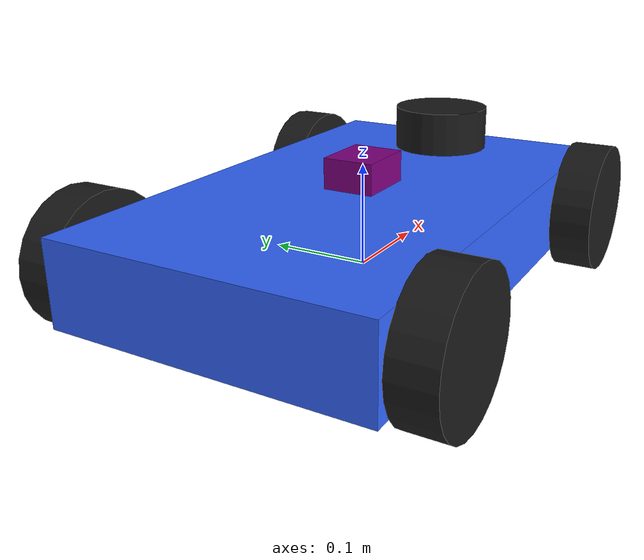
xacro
<?xml version="1.0"?>
<robot name="fourwd_robot" xmlns:xacro="http://ros.org/wiki/xacro">

  <!-- ====================== PARAMETERS ====================== -->
  <xacro:property name="chassis_length" value="0.5"/>
  <xacro:property name="chassis_width"  value="0.3"/>
  <xacro:property name="chassis_height" value="0.08"/>
  <xacro:property name="wheel_radius"   value="0.065"/>
  <xacro:property name="wheel_z_offset"   value="0.035"/>
  <xacro:property name="wheel_width"    value="0.04"/>
  <xacro:property name="wheelbase"      value="0.36"/>
  <xacro:property name="track_width"    value="0.334"/>

<xacro:include filename="$(find fourwd_robot)/urdf/robot.ros2control.xacro"/>

  <!-- ====================== MATERIALS ====================== -->
  <material name="blue">
    <color rgba="0.2 0.4 1.0 1.0"/>
  </material>
  <material name="black">
    <color rgba="0.1 0.1 0.1 1.0"/>
  </material>
  <material name="purple">
    <color rgba="0.5 0 0.5 1.0"/>
  </material>

  <!-- ====================== MACRO: WHEEL ====================== -->
  <xacro:macro name="wheel" params="prefix x y">

    <link name="${prefix}_wheel">
      <visual>
        <origin xyz="0 0 0" rpy="1.5708 0 0"/>
        <geometry>
          <cylinder length="${wheel_width}" radius="${wheel_radius}"/>
        </geometry>
        <material name="black"/>
      </visual>
      <!--  Added collision props-->
      <collision>
      <origin xyz="0 0 0" rpy="1.5708 0 0"/>
        <geometry>
          <cylinder radius="${wheel_radius}" length="${wheel_width}"/>
        </geometry>
      </collision>
      <!--  Added inertia props-->
      <inertial>
        <mass value="2.5"/>
        <inertia ixx="0.15" ixy="0" ixz="0" iyy="0.15" iyz="0" izz="0.25"/>
      </inertial>
    </link>

    <joint name="${prefix}_wheel_joint" type="continuous">
      <parent link="base_link"/>
      <child link="${prefix}_wheel"/>
      <origin xyz="${x} ${y} ${wheel_z_offset}" rpy="0 0 0"/>
      <axis xyz="0 1 0"/>
    </joint>
  </xacro:macro>

  <!-- ====================== BASE (CHASSIS) ====================== -->

  <!-- ====================== DUMMY ROOT LINK (Massless) ====================== -->
  <link name="base_footprint"/>

  <!-- Fixed joint connecting dummy root to actual chassis -->
  <joint name="base_footprint_to_base_link" type="fixed">
    <parent link="base_footprint"/>
    <child link="base_link"/>
    <origin xyz="0 0 0" rpy="0 0 0"/>
  </joint>

  <link name="base_link">
    <visual>
      <origin xyz="0 0 ${chassis_height/2}" rpy="0 0 0"/>
      <geometry>
        <box size="${chassis_length} ${chassis_width} ${chassis_height}"/>
      </geometry>
      <material name="blue"/>
    </visual>
    <!-- Collision -->
    <collision>
      <origin xyz="0 0 ${chassis_height/2}" rpy="0 0 0"/>
      <geometry>
        <box size="${chassis_length} ${chassis_width} ${chassis_height}"/>
      </geometry>
    </collision>
    <!-- Inertia  -->
    <inertial>
      <mass value="20.0"/>
      <inertia ixx="2.0" ixy="0" ixz="0" iyy="1.8" iyz="0" izz="2.5"/>
    </inertial>
  </link>

  <!-- ====================== WHEELS ====================== -->
  <!-- Front Left -->
  <xacro:wheel prefix="fl" x="${wheelbase/2}"  y="${track_width/1.966}"/>

  <!-- Front Right -->
  <xacro:wheel prefix="fr" x="${wheelbase/2}"  y="-${track_width/1.966}"/>

  <!-- Rear Left -->
  <xacro:wheel prefix="rl" x="-${wheelbase/2}" y="${track_width/1.966}"/>

  <!-- Rear Right -->
  <xacro:wheel prefix="rr" x="-${wheelbase/2}" y="-${track_width/1.966}"/>

  <!-- ====================== SENSORS (on top of chassis) ====================== -->
  <!-- LiDAR front-top -->
  <link name="lidar_link">
    <visual>
      <origin xyz="0 0 0" rpy="0 0 0"/>
      <geometry>
        <cylinder length="0.05" radius="0.05"/>
      </geometry>
      <material name="black"/>
    </visual>
    <collision>
      <geometry><cylinder length="0.05" radius="0.05"/></geometry>
    </collision>
    <inertial>
      <mass value="0.5"/>
      <inertia ixx="0.01" ixy="0" ixz="0" iyy="0.01" iyz="0" izz="0.01"/>
    </inertial>
  </link>

  <joint name="lidar_joint" type="fixed">
    <parent link="base_link"/>
    <child link="lidar_link"/>
    <origin xyz="0.18 0 0.1" rpy="0 0 0"/>
  </joint>

<gazebo>
  <plugin filename="libgz_ros2_control-system.so"
          name="gz_ros2_control::GazeboSimROS2ControlPlugin">
    <robot_namespace>/</robot_namespace>
    <parameters>$(find fourwd_robot)/config/fourwd_robot_controllers.yaml</parameters>
  </plugin>
</gazebo>

   <!-- Gazebo LiDAR Plugin (GPU Ray Sensor) -->
  <gazebo reference="lidar_link">
    <sensor name="lidar_sensor" type="gpu_lidar">
      <pose>0 0 0 0 0 0</pose>
      <update_rate>20</update_rate>
      <topic>scan</topic>
      <always_on>true</always_on>
      <visualize>true</visualize>
      <ray>
        <scan>
          <horizontal>
            <samples>720</samples>
            <resolution>1</resolution>
            <min_angle>-3.14159</min_angle>
            <max_angle>3.14159</max_angle>
          </horizontal>
        </scan>
        <range>
          <min>0.1</min>
          <max>30.0</max>
          <resolution>0.01</resolution>
        </range>
      </ray>
    </sensor>
  </gazebo>

  <!-- IMU center-top -->
  <link name="imu_link">
    <visual>
      <origin xyz="0 0 0" rpy="0 0 0"/>
      <geometry>
        <box size="0.06 0.03 0.05"/>
      </geometry>
      <material name="purple"/>
    </visual>
    <collision>
      <geometry><box size="0.06 0.03 0.05"/></geometry>
    </collision>
    <inertial>
      <mass value="0.2"/>
      <inertia ixx="0.001" ixy="0" ixz="0" iyy="0.001" iyz="0" izz="0.001"/>
    </inertial>
  </link>

  <joint name="imu_joint" type="fixed">
    <parent link="base_link"/>
    <child link="imu_link"/>
    <origin xyz="0 0 0.095" rpy="1.57 0 0"/>
  </joint>

  <gazebo reference="imu_link">
    <sensor name="imu_sensor" type="imu">
      <always_on>true</always_on>
      <update_rate>100</update_rate>
      <topic>imu/data</topic>
      <imu>
        <noise>
          <type>gaussian</type>
          <rate>
            <mean>0.0</mean>
            <stddev>0.0002</stddev>
            <bias_mean>0.000007</bias_mean>
            <bias_stddev>0.0000001</bias_stddev>
          </rate>
        </noise>
      </imu>
    </sensor>
  </gazebo>

<xacro:robot_ros2_control name="fourwd_robot" prefix=""/>

</robot>
